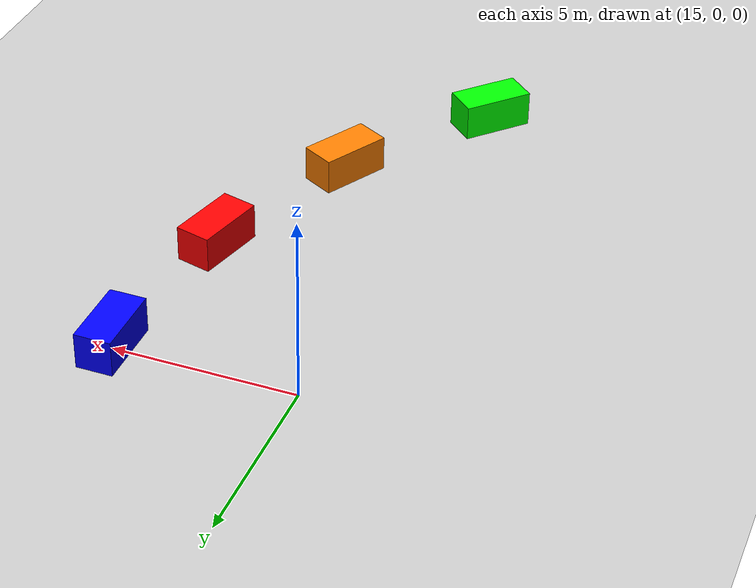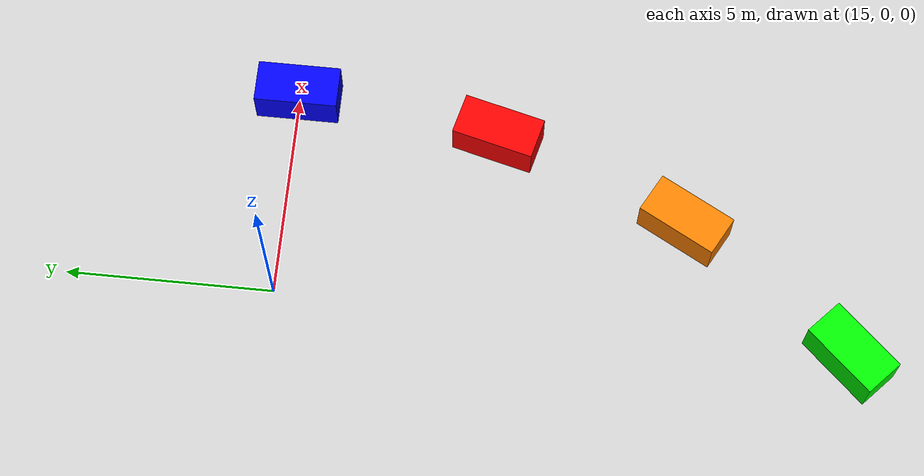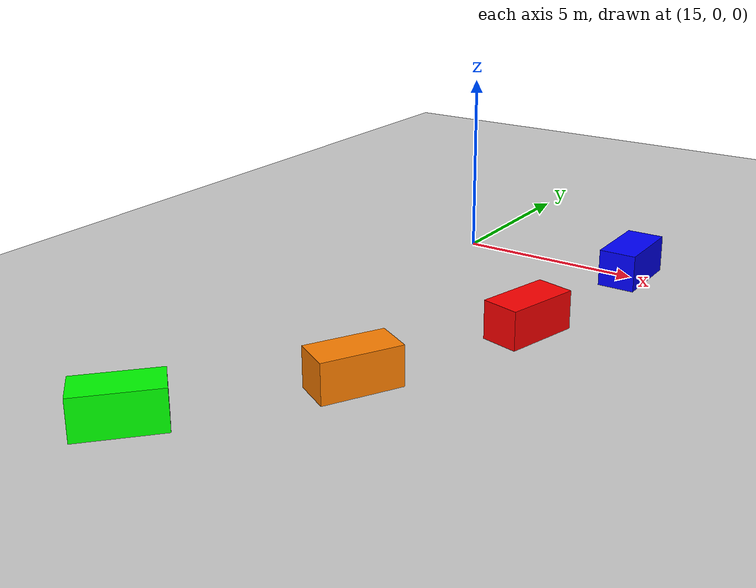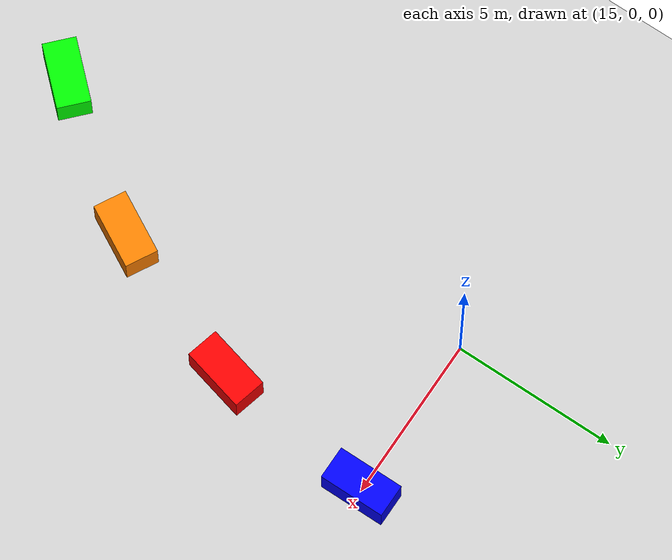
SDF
<?xml version="1.0" ?>
<sdf version="1.7">
  <world name="platoon_circle_world">

    <plugin
      filename="gz-sim-physics-system"
      name="gz::sim::systems::Physics">
    </plugin>

    <plugin
      filename="gz-sim-user-commands-system"
      name="gz::sim::systems::UserCommands">
    </plugin>

    <plugin
      filename="gz-sim-scene-broadcaster-system"
      name="gz::sim::systems::SceneBroadcaster">
    </plugin>

    <light type="directional" name="sun">
      <cast_shadows>true</cast_shadows>
      <pose>0 0 50 0 0 0</pose>
    </light>

    <!-- Large ground plane -->
    <model name="ground_plane">
      <static>true</static>

      <link name="link">

        <collision name="collision">
          <geometry>
            <plane>
              <normal>0 0 1</normal>
              <size>120 120</size>
            </plane>
          </geometry>
        </collision>

        <visual name="visual">
          <geometry>
            <plane>
              <normal>0 0 1</normal>
              <size>120 120</size>
            </plane>
          </geometry>
        </visual>

      </link>
    </model>

    <!-- MASTER -->
    <!-- Initial angle: 0 rad, R = 20 m -->

    <model name="master_vehicle">
      <pose>20 0 0.5 0 0 1.5708</pose>

      <link name="body">

        <visual name="visual">
          <geometry>
            <box>
              <size>2 1 1</size>
            </box>
          </geometry>

          <material>
            <ambient>0 0 1 1</ambient>
            <diffuse>0 0 1 1</diffuse>
          </material>
        </visual>

        <collision name="collision">
          <geometry>
            <box>
              <size>2 1 1</size>
            </box>
          </geometry>
        </collision>

        <inertial>
          <mass>1.0</mass>
        </inertial>

      </link>
    </model>

    <!-- SLAVE 1 -->
    <!-- Approximately 5 m behind Master along the circle -->

    <model name="slave1_vehicle">
      <pose>19.378 -4.948 0.5 0 0 1.3208</pose>

      <link name="body">

        <visual name="visual">
          <geometry>
            <box>
              <size>2 1 1</size>
            </box>
          </geometry>

          <material>
            <ambient>1 0 0 1</ambient>
            <diffuse>1 0 0 1</diffuse>
          </material>
        </visual>

        <collision name="collision">
          <geometry>
            <box>
              <size>2 1 1</size>
            </box>
          </geometry>
        </collision>

        <inertial>
          <mass>1.0</mass>
        </inertial>

      </link>
    </model>

    <!-- SLAVE 2 -->
    <!-- Approximately 10 m behind Master -->

    <model name="slave2_vehicle">
      <pose>17.552 -9.589 0.5 0 0 1.0708</pose>

      <link name="body">

        <visual name="visual">
          <geometry>
            <box>
              <size>2 1 1</size>
            </box>
          </geometry>

          <material>
            <ambient>1 0.5 0 1</ambient>
            <diffuse>1 0.5 0 1</diffuse>
          </material>
        </visual>

        <collision name="collision">
          <geometry>
            <box>
              <size>2 1 1</size>
            </box>
          </geometry>
        </collision>

        <inertial>
          <mass>1.0</mass>
        </inertial>

      </link>
    </model>

    <!-- SLAVE 3 -->
    <!-- Approximately 15 m behind Master -->

    <model name="slave3_vehicle">
      <pose>14.634 -13.633 0.5 0 0 0.8208</pose>

      <link name="body">

        <visual name="visual">
          <geometry>
            <box>
              <size>2 1 1</size>
            </box>
          </geometry>

          <material>
            <ambient>0 1 0 1</ambient>
            <diffuse>0 1 0 1</diffuse>
          </material>
        </visual>

        <collision name="collision">
          <geometry>
            <box>
              <size>2 1 1</size>
            </box>
          </geometry>
        </collision>

        <inertial>
          <mass>1.0</mass>
        </inertial>

      </link>
    </model>

  </world>
</sdf>
